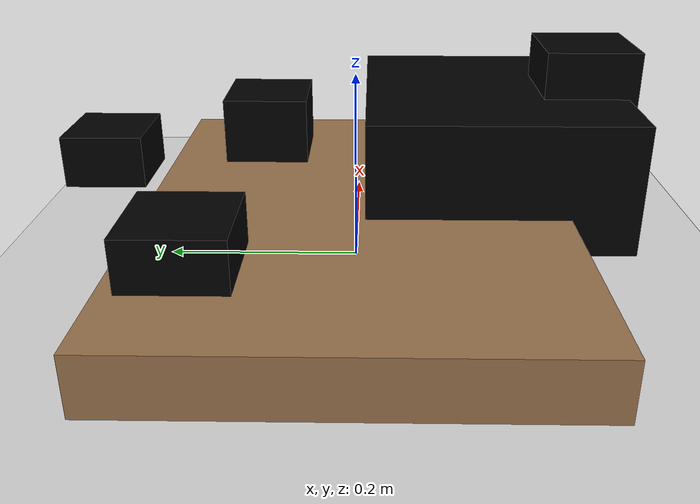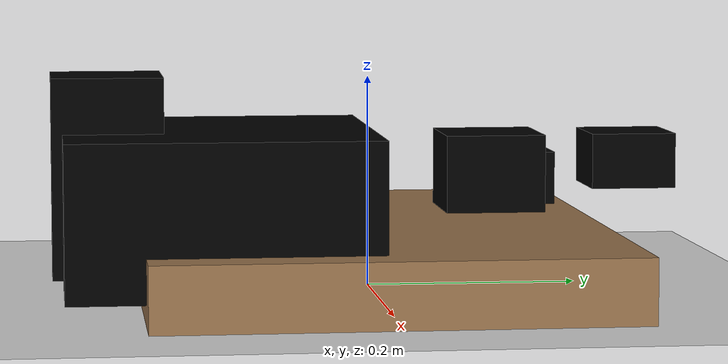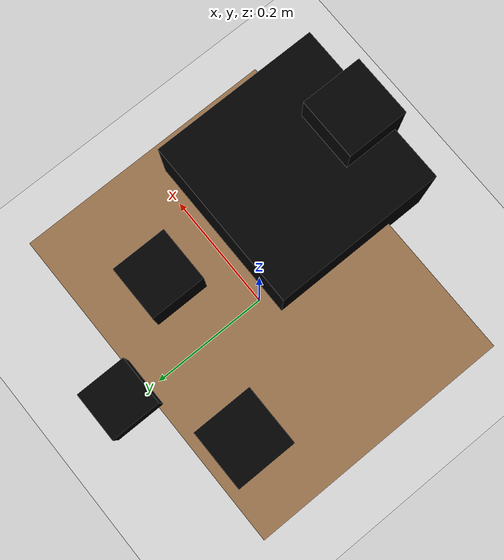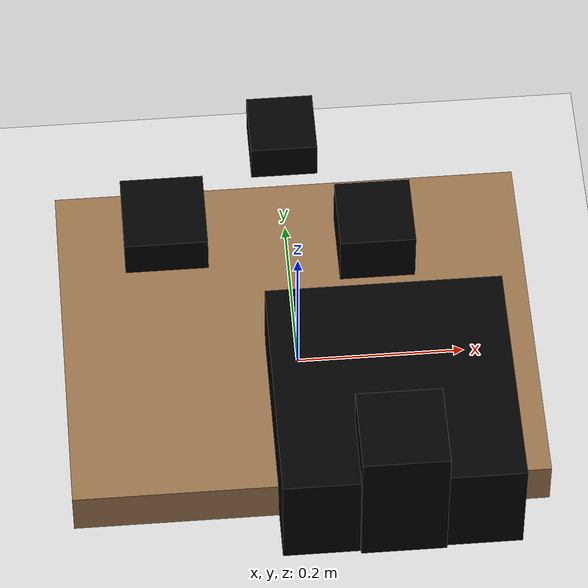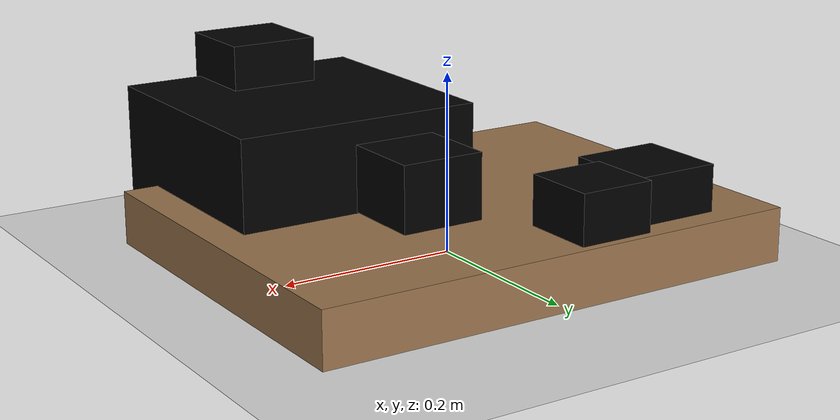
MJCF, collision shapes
<mujoco model="wipe_the_table">
  <compiler meshdir="../../../meshes"/>

  <visual>
    <map znear="0.001"/>
  </visual>

  <asset>
    <!-- meshdir resolved to assets/meshes/ via robotiq.xml compiler -->
    <mesh name="blue_duck_part_000" file="wipe_the_table/blue_duck/part_000.obj"/>
    <mesh name="blue_duck_part_001" file="wipe_the_table/blue_duck/part_001.obj"/>
    <mesh name="blue_duck_part_002" file="wipe_the_table/blue_duck/part_002.obj"/>
    <mesh name="blue_duck_part_003" file="wipe_the_table/blue_duck/part_003.obj"/>
    <mesh name="blue_duck_part_004" file="wipe_the_table/blue_duck/part_004.obj"/>
    <mesh name="blue_duck_part_005" file="wipe_the_table/blue_duck/part_005.obj"/>
    <mesh name="blue_duck_part_006" file="wipe_the_table/blue_duck/part_006.obj"/>
    <mesh name="blue_duck_part_007" file="wipe_the_table/blue_duck/part_007.obj"/>
    <mesh name="blue_duck_part_008" file="wipe_the_table/blue_duck/part_008.obj"/>
    <mesh name="blue_duck_part_009" file="wipe_the_table/blue_duck/part_009.obj"/>
    <mesh name="blue_duck_part_010" file="wipe_the_table/blue_duck/part_010.obj"/>
    <mesh name="blue_duck_part_011" file="wipe_the_table/blue_duck/part_011.obj"/>
    <mesh name="blue_duck_part_012" file="wipe_the_table/blue_duck/part_012.obj"/>
    <mesh name="blue_duck_part_013" file="wipe_the_table/blue_duck/part_013.obj"/>
    <mesh name="blue_duck_part_014" file="wipe_the_table/blue_duck/part_014.obj"/>
    <mesh name="blue_duck_part_015" file="wipe_the_table/blue_duck/part_015.obj"/>
    <mesh name="blue_duck_part_016" file="wipe_the_table/blue_duck/part_016.obj"/>
    <mesh name="blue_duck_part_017" file="wipe_the_table/blue_duck/part_017.obj"/>
    <mesh name="blue_duck_part_018" file="wipe_the_table/blue_duck/part_018.obj"/>
    <mesh name="blue_duck_part_019" file="wipe_the_table/blue_duck/part_019.obj"/>
    <mesh name="blue_duck_part_020" file="wipe_the_table/blue_duck/part_020.obj"/>
    <mesh name="blue_duck_part_021" file="wipe_the_table/blue_duck/part_021.obj"/>
    <mesh name="blue_duck_part_022" file="wipe_the_table/blue_duck/part_022.obj"/>
    <mesh name="blue_duck_part_023" file="wipe_the_table/blue_duck/part_023.obj"/>
    <mesh name="blue_duck_part_024" file="wipe_the_table/blue_duck/part_024.obj"/>
    <mesh name="blue_duck_part_025" file="wipe_the_table/blue_duck/part_025.obj"/>
    <mesh name="blue_duck_part_026" file="wipe_the_table/blue_duck/part_026.obj"/>
    <mesh name="blue_duck_part_027" file="wipe_the_table/blue_duck/part_027.obj"/>
    <mesh name="blue_duck_part_028" file="wipe_the_table/blue_duck/part_028.obj"/>
    <mesh name="blue_duck_part_029" file="wipe_the_table/blue_duck/part_029.obj"/>
    <mesh name="blue_duck_part_030" file="wipe_the_table/blue_duck/part_030.obj"/>
    <mesh name="chicken_doll_part_000" file="wipe_the_table/chicken_doll/part_000.obj"/>
    <mesh name="chicken_doll_part_001" file="wipe_the_table/chicken_doll/part_001.obj"/>
    <mesh name="chicken_doll_part_002" file="wipe_the_table/chicken_doll/part_002.obj"/>
    <mesh name="chicken_doll_part_003" file="wipe_the_table/chicken_doll/part_003.obj"/>
    <mesh name="chicken_doll_part_004" file="wipe_the_table/chicken_doll/part_004.obj"/>
    <mesh name="chicken_doll_part_005" file="wipe_the_table/chicken_doll/part_005.obj"/>
    <mesh name="chicken_doll_part_006" file="wipe_the_table/chicken_doll/part_006.obj"/>
    <mesh name="chicken_doll_part_007" file="wipe_the_table/chicken_doll/part_007.obj"/>
    <mesh name="chicken_doll_part_008" file="wipe_the_table/chicken_doll/part_008.obj"/>
    <mesh name="chicken_doll_part_009" file="wipe_the_table/chicken_doll/part_009.obj"/>
    <mesh name="chicken_doll_part_010" file="wipe_the_table/chicken_doll/part_010.obj"/>
    <mesh name="chicken_doll_part_011" file="wipe_the_table/chicken_doll/part_011.obj"/>
    <mesh name="chicken_doll_part_012" file="wipe_the_table/chicken_doll/part_012.obj"/>
    <mesh name="chicken_doll_part_013" file="wipe_the_table/chicken_doll/part_013.obj"/>
    <mesh name="chicken_doll_part_014" file="wipe_the_table/chicken_doll/part_014.obj"/>
    <mesh name="chicken_doll_part_015" file="wipe_the_table/chicken_doll/part_015.obj"/>
    <mesh name="chicken_doll_part_016" file="wipe_the_table/chicken_doll/part_016.obj"/>
    <mesh name="chicken_doll_part_017" file="wipe_the_table/chicken_doll/part_017.obj"/>
    <mesh name="chicken_doll_part_018" file="wipe_the_table/chicken_doll/part_018.obj"/>
    <mesh name="chicken_doll_part_019" file="wipe_the_table/chicken_doll/part_019.obj"/>
    <mesh name="chicken_doll_part_020" file="wipe_the_table/chicken_doll/part_020.obj"/>
    <mesh name="chicken_doll_part_021" file="wipe_the_table/chicken_doll/part_021.obj"/>
    <mesh name="chicken_doll_part_022" file="wipe_the_table/chicken_doll/part_022.obj"/>
    <mesh name="chicken_doll_part_023" file="wipe_the_table/chicken_doll/part_023.obj"/>
    <mesh name="chicken_doll_part_024" file="wipe_the_table/chicken_doll/part_024.obj"/>
    <mesh name="chicken_doll_part_025" file="wipe_the_table/chicken_doll/part_025.obj"/>
    <mesh name="chicken_doll_part_026" file="wipe_the_table/chicken_doll/part_026.obj"/>
    <mesh name="chicken_doll_part_027" file="wipe_the_table/chicken_doll/part_027.obj"/>
    <mesh name="chicken_doll_part_028" file="wipe_the_table/chicken_doll/part_028.obj"/>
    <mesh name="chicken_doll_part_029" file="wipe_the_table/chicken_doll/part_029.obj"/>
    <mesh name="chicken_doll_part_030" file="wipe_the_table/chicken_doll/part_030.obj"/>
    <mesh name="dog_part_000" file="wipe_the_table/dog/part_000.obj"/>
    <mesh name="dog_part_001" file="wipe_the_table/dog/part_001.obj"/>
    <mesh name="dog_part_002" file="wipe_the_table/dog/part_002.obj"/>
    <mesh name="dog_part_003" file="wipe_the_table/dog/part_003.obj"/>
    <mesh name="dog_part_004" file="wipe_the_table/dog/part_004.obj"/>
    <mesh name="dog_part_005" file="wipe_the_table/dog/part_005.obj"/>
    <mesh name="dog_part_006" file="wipe_the_table/dog/part_006.obj"/>
    <mesh name="dog_part_007" file="wipe_the_table/dog/part_007.obj"/>
    <mesh name="dog_part_008" file="wipe_the_table/dog/part_008.obj"/>
    <mesh name="dog_part_009" file="wipe_the_table/dog/part_009.obj"/>
    <mesh name="dog_part_010" file="wipe_the_table/dog/part_010.obj"/>
    <mesh name="dog_part_011" file="wipe_the_table/dog/part_011.obj"/>
    <mesh name="dog_part_012" file="wipe_the_table/dog/part_012.obj"/>
    <mesh name="dog_part_013" file="wipe_the_table/dog/part_013.obj"/>
    <mesh name="dog_part_014" file="wipe_the_table/dog/part_014.obj"/>
    <mesh name="dog_part_015" file="wipe_the_table/dog/part_015.obj"/>
    <mesh name="dog_part_016" file="wipe_the_table/dog/part_016.obj"/>
    <mesh name="dog_part_017" file="wipe_the_table/dog/part_017.obj"/>
    <mesh name="dog_part_018" file="wipe_the_table/dog/part_018.obj"/>
    <mesh name="dog_part_019" file="wipe_the_table/dog/part_019.obj"/>
    <mesh name="dog_part_020" file="wipe_the_table/dog/part_020.obj"/>
    <mesh name="dog_part_021" file="wipe_the_table/dog/part_021.obj"/>
    <mesh name="dog_part_022" file="wipe_the_table/dog/part_022.obj"/>
    <mesh name="dog_part_023" file="wipe_the_table/dog/part_023.obj"/>
    <mesh name="dog_part_024" file="wipe_the_table/dog/part_024.obj"/>
    <mesh name="dog_part_025" file="wipe_the_table/dog/part_025.obj"/>
    <mesh name="dog_part_026" file="wipe_the_table/dog/part_026.obj"/>
    <mesh name="dog_part_027" file="wipe_the_table/dog/part_027.obj"/>
    <mesh name="dog_part_028" file="wipe_the_table/dog/part_028.obj"/>
    <mesh name="dog_part_029" file="wipe_the_table/dog/part_029.obj"/>
    <mesh name="dog_part_030" file="wipe_the_table/dog/part_030.obj"/>
    <mesh name="dog_part_031" file="wipe_the_table/dog/part_031.obj"/>
    <mesh name="white_box_part_000" file="wipe_the_table/white_box/part_000.obj"/>
    <mesh name="white_box_part_001" file="wipe_the_table/white_box/part_001.obj"/>
    <mesh name="white_box_part_002" file="wipe_the_table/white_box/part_002.obj"/>
    <mesh name="white_box_part_003" file="wipe_the_table/white_box/part_003.obj"/>
    <mesh name="white_box_part_004" file="wipe_the_table/white_box/part_004.obj"/>
    <mesh name="white_box_part_005" file="wipe_the_table/white_box/part_005.obj"/>
    <mesh name="white_box_part_006" file="wipe_the_table/white_box/part_006.obj"/>
    <mesh name="white_box_part_007" file="wipe_the_table/white_box/part_007.obj"/>
    <mesh name="white_box_part_008" file="wipe_the_table/white_box/part_008.obj"/>
    <mesh name="white_box_part_009" file="wipe_the_table/white_box/part_009.obj"/>
    <mesh name="white_box_part_010" file="wipe_the_table/white_box/part_010.obj"/>
    <mesh name="white_box_part_011" file="wipe_the_table/white_box/part_011.obj"/>
    <mesh name="white_box_part_012" file="wipe_the_table/white_box/part_012.obj"/>
    <mesh name="white_box_part_013" file="wipe_the_table/white_box/part_013.obj"/>
    <mesh name="white_box_part_014" file="wipe_the_table/white_box/part_014.obj"/>
    <mesh name="white_box_part_015" file="wipe_the_table/white_box/part_015.obj"/>
    <mesh name="white_box_part_016" file="wipe_the_table/white_box/part_016.obj"/>
    <mesh name="white_box_part_017" file="wipe_the_table/white_box/part_017.obj"/>
    <mesh name="white_box_part_018" file="wipe_the_table/white_box/part_018.obj"/>
    <mesh name="white_box_part_019" file="wipe_the_table/white_box/part_019.obj"/>
    <mesh name="white_box_part_020" file="wipe_the_table/white_box/part_020.obj"/>
    <mesh name="white_box_part_021" file="wipe_the_table/white_box/part_021.obj"/>
    <mesh name="white_box_part_022" file="wipe_the_table/white_box/part_022.obj"/>
    <mesh name="white_box_part_023" file="wipe_the_table/white_box/part_023.obj"/>
    <mesh name="white_box_part_024" file="wipe_the_table/white_box/part_024.obj"/>
    <mesh name="white_box_part_025" file="wipe_the_table/white_box/part_025.obj"/>
    <mesh name="white_box_part_026" file="wipe_the_table/white_box/part_026.obj"/>
    <mesh name="white_box_part_027" file="wipe_the_table/white_box/part_027.obj"/>
    <mesh name="white_box_part_028" file="wipe_the_table/white_box/part_028.obj"/>
    <mesh name="white_box_part_029" file="wipe_the_table/white_box/part_029.obj"/>
    <mesh name="white_box_part_030" file="wipe_the_table/white_box/part_030.obj"/>
    <mesh name="white_box_part_031" file="wipe_the_table/white_box/part_031.obj"/>
    <mesh name="yellow_brush_part_000" file="wipe_the_table/yellow_brush/part_000.obj"/>
    <mesh name="yellow_brush_part_001" file="wipe_the_table/yellow_brush/part_001.obj"/>
    <mesh name="yellow_brush_part_002" file="wipe_the_table/yellow_brush/part_002.obj"/>
    <mesh name="yellow_brush_part_003" file="wipe_the_table/yellow_brush/part_003.obj"/>
    <mesh name="yellow_brush_part_004" file="wipe_the_table/yellow_brush/part_004.obj"/>
    <mesh name="yellow_brush_part_005" file="wipe_the_table/yellow_brush/part_005.obj"/>
    <mesh name="yellow_brush_part_006" file="wipe_the_table/yellow_brush/part_006.obj"/>
    <mesh name="yellow_brush_part_007" file="wipe_the_table/yellow_brush/part_007.obj"/>
    <mesh name="yellow_brush_part_008" file="wipe_the_table/yellow_brush/part_008.obj"/>
    <mesh name="yellow_brush_part_009" file="wipe_the_table/yellow_brush/part_009.obj"/>
    <mesh name="yellow_brush_part_010" file="wipe_the_table/yellow_brush/part_010.obj"/>
    <mesh name="yellow_brush_part_011" file="wipe_the_table/yellow_brush/part_011.obj"/>
    <mesh name="yellow_brush_part_012" file="wipe_the_table/yellow_brush/part_012.obj"/>
    <mesh name="yellow_brush_part_013" file="wipe_the_table/yellow_brush/part_013.obj"/>
    <mesh name="yellow_brush_part_014" file="wipe_the_table/yellow_brush/part_014.obj"/>
    <mesh name="yellow_brush_part_015" file="wipe_the_table/yellow_brush/part_015.obj"/>
    <mesh name="yellow_brush_part_016" file="wipe_the_table/yellow_brush/part_016.obj"/>
    <mesh name="yellow_brush_part_017" file="wipe_the_table/yellow_brush/part_017.obj"/>
    <mesh name="yellow_brush_part_018" file="wipe_the_table/yellow_brush/part_018.obj"/>
    <mesh name="yellow_brush_part_019" file="wipe_the_table/yellow_brush/part_019.obj"/>
    <mesh name="yellow_brush_part_020" file="wipe_the_table/yellow_brush/part_020.obj"/>
    <mesh name="yellow_brush_part_021" file="wipe_the_table/yellow_brush/part_021.obj"/>
    <mesh name="yellow_brush_part_022" file="wipe_the_table/yellow_brush/part_022.obj"/>
    <mesh name="yellow_brush_part_023" file="wipe_the_table/yellow_brush/part_023.obj"/>
    <mesh name="yellow_brush_part_024" file="wipe_the_table/yellow_brush/part_024.obj"/>
    <mesh name="yellow_brush_part_025" file="wipe_the_table/yellow_brush/part_025.obj"/>
    <mesh name="yellow_brush_part_026" file="wipe_the_table/yellow_brush/part_026.obj"/>
    <mesh name="yellow_brush_part_027" file="wipe_the_table/yellow_brush/part_027.obj"/>
    <mesh name="yellow_brush_part_028" file="wipe_the_table/yellow_brush/part_028.obj"/>
    <mesh name="yellow_brush_part_029" file="wipe_the_table/yellow_brush/part_029.obj"/>
    <mesh name="yellow_brush_part_030" file="wipe_the_table/yellow_brush/part_030.obj"/>
    <mesh name="yellow_brush_part_031" file="wipe_the_table/yellow_brush/part_031.obj"/>
    <mesh name="transparent_tape_paper_part_000" file="wipe_the_table/transparent_tape_paper/part_000.obj"/>
    <mesh name="transparent_tape_paper_part_001" file="wipe_the_table/transparent_tape_paper/part_001.obj"/>
    <mesh name="transparent_tape_paper_part_002" file="wipe_the_table/transparent_tape_paper/part_002.obj"/>
    <mesh name="transparent_tape_paper_part_003" file="wipe_the_table/transparent_tape_paper/part_003.obj"/>
    <mesh name="transparent_tape_paper_part_004" file="wipe_the_table/transparent_tape_paper/part_004.obj"/>
    <mesh name="transparent_tape_paper_part_005" file="wipe_the_table/transparent_tape_paper/part_005.obj"/>
    <mesh name="transparent_tape_paper_part_006" file="wipe_the_table/transparent_tape_paper/part_006.obj"/>
    <mesh name="transparent_tape_paper_part_007" file="wipe_the_table/transparent_tape_paper/part_007.obj"/>
    <mesh name="transparent_tape_paper_part_008" file="wipe_the_table/transparent_tape_paper/part_008.obj"/>
    <mesh name="transparent_tape_paper_part_009" file="wipe_the_table/transparent_tape_paper/part_009.obj"/>
    <mesh name="transparent_tape_paper_part_010" file="wipe_the_table/transparent_tape_paper/part_010.obj"/>
    <mesh name="transparent_tape_paper_part_011" file="wipe_the_table/transparent_tape_paper/part_011.obj"/>
    <mesh name="transparent_tape_paper_part_012" file="wipe_the_table/transparent_tape_paper/part_012.obj"/>
    <mesh name="transparent_tape_paper_part_013" file="wipe_the_table/transparent_tape_paper/part_013.obj"/>
    <mesh name="transparent_tape_paper_part_014" file="wipe_the_table/transparent_tape_paper/part_014.obj"/>
    <mesh name="transparent_tape_paper_part_015" file="wipe_the_table/transparent_tape_paper/part_015.obj"/>
    <mesh name="transparent_tape_paper_part_016" file="wipe_the_table/transparent_tape_paper/part_016.obj"/>
    <mesh name="transparent_tape_paper_part_017" file="wipe_the_table/transparent_tape_paper/part_017.obj"/>
    <mesh name="transparent_tape_paper_part_018" file="wipe_the_table/transparent_tape_paper/part_018.obj"/>
    <mesh name="transparent_tape_paper_part_019" file="wipe_the_table/transparent_tape_paper/part_019.obj"/>
    <mesh name="transparent_tape_paper_part_020" file="wipe_the_table/transparent_tape_paper/part_020.obj"/>
    <mesh name="transparent_tape_paper_part_021" file="wipe_the_table/transparent_tape_paper/part_021.obj"/>
    <mesh name="transparent_tape_paper_part_022" file="wipe_the_table/transparent_tape_paper/part_022.obj"/>
    <mesh name="transparent_tape_paper_part_023" file="wipe_the_table/transparent_tape_paper/part_023.obj"/>
    <mesh name="transparent_tape_paper_part_024" file="wipe_the_table/transparent_tape_paper/part_024.obj"/>
    <mesh name="transparent_tape_paper_part_025" file="wipe_the_table/transparent_tape_paper/part_025.obj"/>

    <material name="blue_duck_mat" rgba="0.1 0.3 0.9 1" reflectance="0.2"/>
    <material name="chicken_doll_mat" rgba="0.95 0.85 0.2 1" reflectance="0.2"/>
    <material name="dog_mat" rgba="0.7 0.5 0.3 1" reflectance="0.2"/>
    <material name="white_box_mat" rgba="0.9 0.9 0.9 1" reflectance="0.2"/>
    <material name="yellow_brush_mat" rgba="0.95 0.85 0.1 1" reflectance="0.2"/>
    <material name="transparent_tape_paper_mat" rgba="0.8 0.8 0.9 0.7" reflectance="0.2"/>
  </asset>

  <worldbody>
    <light name="demo_light" pos="0 0 1.5" dir="0 0 -1"/>
    <geom name="floor" type="plane" size="2 2 0.1" rgba="0.85 0.85 0.85 1"/>

    <!-- table: center z=0.03, half-height=0.03 → top surface z=0.06 -->
    <body name="table" pos="0 0 0.03">
      <geom name="table_top" type="box" size="0.28 0.22 0.03" rgba="0.6 0.45 0.3 1"/>
    </body>

    <!-- blue duck (dynamic) -->
    <body name="blue_duck" pos="0.0  0.25 0.12">
      <freejoint name="blue_duck_joint"/>
      <geom name="blue_duck_vis_000" type="mesh" mesh="blue_duck_part_000" material="blue_duck_mat" density="0" contype="0" conaffinity="0" group="1"/>
      <geom name="blue_duck_vis_001" type="mesh" mesh="blue_duck_part_001" material="blue_duck_mat" density="0" contype="0" conaffinity="0" group="1"/>
      <geom name="blue_duck_vis_002" type="mesh" mesh="blue_duck_part_002" material="blue_duck_mat" density="0" contype="0" conaffinity="0" group="1"/>
      <geom name="blue_duck_vis_003" type="mesh" mesh="blue_duck_part_003" material="blue_duck_mat" density="0" contype="0" conaffinity="0" group="1"/>
      <geom name="blue_duck_vis_004" type="mesh" mesh="blue_duck_part_004" material="blue_duck_mat" density="0" contype="0" conaffinity="0" group="1"/>
      <geom name="blue_duck_vis_005" type="mesh" mesh="blue_duck_part_005" material="blue_duck_mat" density="0" contype="0" conaffinity="0" group="1"/>
      <geom name="blue_duck_vis_006" type="mesh" mesh="blue_duck_part_006" material="blue_duck_mat" density="0" contype="0" conaffinity="0" group="1"/>
      <geom name="blue_duck_vis_007" type="mesh" mesh="blue_duck_part_007" material="blue_duck_mat" density="0" contype="0" conaffinity="0" group="1"/>
      <geom name="blue_duck_vis_008" type="mesh" mesh="blue_duck_part_008" material="blue_duck_mat" density="0" contype="0" conaffinity="0" group="1"/>
      <geom name="blue_duck_vis_009" type="mesh" mesh="blue_duck_part_009" material="blue_duck_mat" density="0" contype="0" conaffinity="0" group="1"/>
      <geom name="blue_duck_vis_010" type="mesh" mesh="blue_duck_part_010" material="blue_duck_mat" density="0" contype="0" conaffinity="0" group="1"/>
      <geom name="blue_duck_vis_011" type="mesh" mesh="blue_duck_part_011" material="blue_duck_mat" density="0" contype="0" conaffinity="0" group="1"/>
      <geom name="blue_duck_vis_012" type="mesh" mesh="blue_duck_part_012" material="blue_duck_mat" density="0" contype="0" conaffinity="0" group="1"/>
      <geom name="blue_duck_vis_013" type="mesh" mesh="blue_duck_part_013" material="blue_duck_mat" density="0" contype="0" conaffinity="0" group="1"/>
      <geom name="blue_duck_vis_014" type="mesh" mesh="blue_duck_part_014" material="blue_duck_mat" density="0" contype="0" conaffinity="0" group="1"/>
      <geom name="blue_duck_vis_015" type="mesh" mesh="blue_duck_part_015" material="blue_duck_mat" density="0" contype="0" conaffinity="0" group="1"/>
      <geom name="blue_duck_vis_016" type="mesh" mesh="blue_duck_part_016" material="blue_duck_mat" density="0" contype="0" conaffinity="0" group="1"/>
      <geom name="blue_duck_vis_017" type="mesh" mesh="blue_duck_part_017" material="blue_duck_mat" density="0" contype="0" conaffinity="0" group="1"/>
      <geom name="blue_duck_vis_018" type="mesh" mesh="blue_duck_part_018" material="blue_duck_mat" density="0" contype="0" conaffinity="0" group="1"/>
      <geom name="blue_duck_vis_019" type="mesh" mesh="blue_duck_part_019" material="blue_duck_mat" density="0" contype="0" conaffinity="0" group="1"/>
      <geom name="blue_duck_vis_020" type="mesh" mesh="blue_duck_part_020" material="blue_duck_mat" density="0" contype="0" conaffinity="0" group="1"/>
      <geom name="blue_duck_vis_021" type="mesh" mesh="blue_duck_part_021" material="blue_duck_mat" density="0" contype="0" conaffinity="0" group="1"/>
      <geom name="blue_duck_vis_022" type="mesh" mesh="blue_duck_part_022" material="blue_duck_mat" density="0" contype="0" conaffinity="0" group="1"/>
      <geom name="blue_duck_vis_023" type="mesh" mesh="blue_duck_part_023" material="blue_duck_mat" density="0" contype="0" conaffinity="0" group="1"/>
      <geom name="blue_duck_vis_024" type="mesh" mesh="blue_duck_part_024" material="blue_duck_mat" density="0" contype="0" conaffinity="0" group="1"/>
      <geom name="blue_duck_vis_025" type="mesh" mesh="blue_duck_part_025" material="blue_duck_mat" density="0" contype="0" conaffinity="0" group="1"/>
      <geom name="blue_duck_vis_026" type="mesh" mesh="blue_duck_part_026" material="blue_duck_mat" density="0" contype="0" conaffinity="0" group="1"/>
      <geom name="blue_duck_vis_027" type="mesh" mesh="blue_duck_part_027" material="blue_duck_mat" density="0" contype="0" conaffinity="0" group="1"/>
      <geom name="blue_duck_vis_028" type="mesh" mesh="blue_duck_part_028" material="blue_duck_mat" density="0" contype="0" conaffinity="0" group="1"/>
      <geom name="blue_duck_vis_029" type="mesh" mesh="blue_duck_part_029" material="blue_duck_mat" density="0" contype="0" conaffinity="0" group="1"/>
      <geom name="blue_duck_vis_030" type="mesh" mesh="blue_duck_part_030" material="blue_duck_mat" density="0" contype="0" conaffinity="0" group="1"/>
      <geom name="blue_duck_col" type="box" size="0.04 0.04 0.026" mass="0.1" rgba="0 0 0 0" contype="1" conaffinity="1"/>
      <site name="blue_duck_site" pos="0 0 0" size="0.004" rgba="1 0 0 0"/>
    </body>
    <!-- chicken doll (dynamic) -->
    <body name="chicken_doll" pos="0.1  0.1  0.12">
      <freejoint name="chicken_doll_joint"/>
      <geom name="chicken_doll_vis_000" type="mesh" mesh="chicken_doll_part_000" material="chicken_doll_mat" density="0" contype="0" conaffinity="0" group="1"/>
      <geom name="chicken_doll_vis_001" type="mesh" mesh="chicken_doll_part_001" material="chicken_doll_mat" density="0" contype="0" conaffinity="0" group="1"/>
      <geom name="chicken_doll_vis_002" type="mesh" mesh="chicken_doll_part_002" material="chicken_doll_mat" density="0" contype="0" conaffinity="0" group="1"/>
      <geom name="chicken_doll_vis_003" type="mesh" mesh="chicken_doll_part_003" material="chicken_doll_mat" density="0" contype="0" conaffinity="0" group="1"/>
      <geom name="chicken_doll_vis_004" type="mesh" mesh="chicken_doll_part_004" material="chicken_doll_mat" density="0" contype="0" conaffinity="0" group="1"/>
      <geom name="chicken_doll_vis_005" type="mesh" mesh="chicken_doll_part_005" material="chicken_doll_mat" density="0" contype="0" conaffinity="0" group="1"/>
      <geom name="chicken_doll_vis_006" type="mesh" mesh="chicken_doll_part_006" material="chicken_doll_mat" density="0" contype="0" conaffinity="0" group="1"/>
      <geom name="chicken_doll_vis_007" type="mesh" mesh="chicken_doll_part_007" material="chicken_doll_mat" density="0" contype="0" conaffinity="0" group="1"/>
      <geom name="chicken_doll_vis_008" type="mesh" mesh="chicken_doll_part_008" material="chicken_doll_mat" density="0" contype="0" conaffinity="0" group="1"/>
      <geom name="chicken_doll_vis_009" type="mesh" mesh="chicken_doll_part_009" material="chicken_doll_mat" density="0" contype="0" conaffinity="0" group="1"/>
      <geom name="chicken_doll_vis_010" type="mesh" mesh="chicken_doll_part_010" material="chicken_doll_mat" density="0" contype="0" conaffinity="0" group="1"/>
      <geom name="chicken_doll_vis_011" type="mesh" mesh="chicken_doll_part_011" material="chicken_doll_mat" density="0" contype="0" conaffinity="0" group="1"/>
      <geom name="chicken_doll_vis_012" type="mesh" mesh="chicken_doll_part_012" material="chicken_doll_mat" density="0" contype="0" conaffinity="0" group="1"/>
      <geom name="chicken_doll_vis_013" type="mesh" mesh="chicken_doll_part_013" material="chicken_doll_mat" density="0" contype="0" conaffinity="0" group="1"/>
      <geom name="chicken_doll_vis_014" type="mesh" mesh="chicken_doll_part_014" material="chicken_doll_mat" density="0" contype="0" conaffinity="0" group="1"/>
      <geom name="chicken_doll_vis_015" type="mesh" mesh="chicken_doll_part_015" material="chicken_doll_mat" density="0" contype="0" conaffinity="0" group="1"/>
      <geom name="chicken_doll_vis_016" type="mesh" mesh="chicken_doll_part_016" material="chicken_doll_mat" density="0" contype="0" conaffinity="0" group="1"/>
      <geom name="chicken_doll_vis_017" type="mesh" mesh="chicken_doll_part_017" material="chicken_doll_mat" density="0" contype="0" conaffinity="0" group="1"/>
      <geom name="chicken_doll_vis_018" type="mesh" mesh="chicken_doll_part_018" material="chicken_doll_mat" density="0" contype="0" conaffinity="0" group="1"/>
      <geom name="chicken_doll_vis_019" type="mesh" mesh="chicken_doll_part_019" material="chicken_doll_mat" density="0" contype="0" conaffinity="0" group="1"/>
      <geom name="chicken_doll_vis_020" type="mesh" mesh="chicken_doll_part_020" material="chicken_doll_mat" density="0" contype="0" conaffinity="0" group="1"/>
      <geom name="chicken_doll_vis_021" type="mesh" mesh="chicken_doll_part_021" material="chicken_doll_mat" density="0" contype="0" conaffinity="0" group="1"/>
      <geom name="chicken_doll_vis_022" type="mesh" mesh="chicken_doll_part_022" material="chicken_doll_mat" density="0" contype="0" conaffinity="0" group="1"/>
      <geom name="chicken_doll_vis_023" type="mesh" mesh="chicken_doll_part_023" material="chicken_doll_mat" density="0" contype="0" conaffinity="0" group="1"/>
      <geom name="chicken_doll_vis_024" type="mesh" mesh="chicken_doll_part_024" material="chicken_doll_mat" density="0" contype="0" conaffinity="0" group="1"/>
      <geom name="chicken_doll_vis_025" type="mesh" mesh="chicken_doll_part_025" material="chicken_doll_mat" density="0" contype="0" conaffinity="0" group="1"/>
      <geom name="chicken_doll_vis_026" type="mesh" mesh="chicken_doll_part_026" material="chicken_doll_mat" density="0" contype="0" conaffinity="0" group="1"/>
      <geom name="chicken_doll_vis_027" type="mesh" mesh="chicken_doll_part_027" material="chicken_doll_mat" density="0" contype="0" conaffinity="0" group="1"/>
      <geom name="chicken_doll_vis_028" type="mesh" mesh="chicken_doll_part_028" material="chicken_doll_mat" density="0" contype="0" conaffinity="0" group="1"/>
      <geom name="chicken_doll_vis_029" type="mesh" mesh="chicken_doll_part_029" material="chicken_doll_mat" density="0" contype="0" conaffinity="0" group="1"/>
      <geom name="chicken_doll_vis_030" type="mesh" mesh="chicken_doll_part_030" material="chicken_doll_mat" density="0" contype="0" conaffinity="0" group="1"/>
      <geom name="chicken_doll_col" type="box" size="0.045 0.045 0.035" mass="0.1" rgba="0 0 0 0" contype="1" conaffinity="1"/>
      <site name="chicken_doll_site" pos="0 0 0" size="0.004" rgba="1 0 0 0"/>
    </body>
    <!-- dog (static) -->
    <body name="dog" pos="0.1 -0.25 0.12">
      <geom name="dog_vis_000" type="mesh" mesh="dog_part_000" material="dog_mat" density="0" contype="0" conaffinity="0" group="1"/>
      <geom name="dog_vis_001" type="mesh" mesh="dog_part_001" material="dog_mat" density="0" contype="0" conaffinity="0" group="1"/>
      <geom name="dog_vis_002" type="mesh" mesh="dog_part_002" material="dog_mat" density="0" contype="0" conaffinity="0" group="1"/>
      <geom name="dog_vis_003" type="mesh" mesh="dog_part_003" material="dog_mat" density="0" contype="0" conaffinity="0" group="1"/>
      <geom name="dog_vis_004" type="mesh" mesh="dog_part_004" material="dog_mat" density="0" contype="0" conaffinity="0" group="1"/>
      <geom name="dog_vis_005" type="mesh" mesh="dog_part_005" material="dog_mat" density="0" contype="0" conaffinity="0" group="1"/>
      <geom name="dog_vis_006" type="mesh" mesh="dog_part_006" material="dog_mat" density="0" contype="0" conaffinity="0" group="1"/>
      <geom name="dog_vis_007" type="mesh" mesh="dog_part_007" material="dog_mat" density="0" contype="0" conaffinity="0" group="1"/>
      <geom name="dog_vis_008" type="mesh" mesh="dog_part_008" material="dog_mat" density="0" contype="0" conaffinity="0" group="1"/>
      <geom name="dog_vis_009" type="mesh" mesh="dog_part_009" material="dog_mat" density="0" contype="0" conaffinity="0" group="1"/>
      <geom name="dog_vis_010" type="mesh" mesh="dog_part_010" material="dog_mat" density="0" contype="0" conaffinity="0" group="1"/>
      <geom name="dog_vis_011" type="mesh" mesh="dog_part_011" material="dog_mat" density="0" contype="0" conaffinity="0" group="1"/>
      <geom name="dog_vis_012" type="mesh" mesh="dog_part_012" material="dog_mat" density="0" contype="0" conaffinity="0" group="1"/>
      <geom name="dog_vis_013" type="mesh" mesh="dog_part_013" material="dog_mat" density="0" contype="0" conaffinity="0" group="1"/>
      <geom name="dog_vis_014" type="mesh" mesh="dog_part_014" material="dog_mat" density="0" contype="0" conaffinity="0" group="1"/>
      <geom name="dog_vis_015" type="mesh" mesh="dog_part_015" material="dog_mat" density="0" contype="0" conaffinity="0" group="1"/>
      <geom name="dog_vis_016" type="mesh" mesh="dog_part_016" material="dog_mat" density="0" contype="0" conaffinity="0" group="1"/>
      <geom name="dog_vis_017" type="mesh" mesh="dog_part_017" material="dog_mat" density="0" contype="0" conaffinity="0" group="1"/>
      <geom name="dog_vis_018" type="mesh" mesh="dog_part_018" material="dog_mat" density="0" contype="0" conaffinity="0" group="1"/>
      <geom name="dog_vis_019" type="mesh" mesh="dog_part_019" material="dog_mat" density="0" contype="0" conaffinity="0" group="1"/>
      <geom name="dog_vis_020" type="mesh" mesh="dog_part_020" material="dog_mat" density="0" contype="0" conaffinity="0" group="1"/>
      <geom name="dog_vis_021" type="mesh" mesh="dog_part_021" material="dog_mat" density="0" contype="0" conaffinity="0" group="1"/>
      <geom name="dog_vis_022" type="mesh" mesh="dog_part_022" material="dog_mat" density="0" contype="0" conaffinity="0" group="1"/>
      <geom name="dog_vis_023" type="mesh" mesh="dog_part_023" material="dog_mat" density="0" contype="0" conaffinity="0" group="1"/>
      <geom name="dog_vis_024" type="mesh" mesh="dog_part_024" material="dog_mat" density="0" contype="0" conaffinity="0" group="1"/>
      <geom name="dog_vis_025" type="mesh" mesh="dog_part_025" material="dog_mat" density="0" contype="0" conaffinity="0" group="1"/>
      <geom name="dog_vis_026" type="mesh" mesh="dog_part_026" material="dog_mat" density="0" contype="0" conaffinity="0" group="1"/>
      <geom name="dog_vis_027" type="mesh" mesh="dog_part_027" material="dog_mat" density="0" contype="0" conaffinity="0" group="1"/>
      <geom name="dog_vis_028" type="mesh" mesh="dog_part_028" material="dog_mat" density="0" contype="0" conaffinity="0" group="1"/>
      <geom name="dog_vis_029" type="mesh" mesh="dog_part_029" material="dog_mat" density="0" contype="0" conaffinity="0" group="1"/>
      <geom name="dog_vis_030" type="mesh" mesh="dog_part_030" material="dog_mat" density="0" contype="0" conaffinity="0" group="1"/>
      <geom name="dog_vis_031" type="mesh" mesh="dog_part_031" material="dog_mat" density="0" contype="0" conaffinity="0" group="1"/>
      <geom name="dog_col" type="box" size="0.05 0.05 0.09" mass="0.5" rgba="0 0 0 0" contype="1" conaffinity="1"/>
      <site name="dog_site" pos="0 0 0" size="0.004" rgba="1 0 0 0"/>
    </body>
    <!-- white box (static) -->
    <body name="white_box" pos="0.1 -0.15 0.09">
      <geom name="white_box_vis_000" type="mesh" mesh="white_box_part_000" material="white_box_mat" density="0" contype="0" conaffinity="0" group="1"/>
      <geom name="white_box_vis_001" type="mesh" mesh="white_box_part_001" material="white_box_mat" density="0" contype="0" conaffinity="0" group="1"/>
      <geom name="white_box_vis_002" type="mesh" mesh="white_box_part_002" material="white_box_mat" density="0" contype="0" conaffinity="0" group="1"/>
      <geom name="white_box_vis_003" type="mesh" mesh="white_box_part_003" material="white_box_mat" density="0" contype="0" conaffinity="0" group="1"/>
      <geom name="white_box_vis_004" type="mesh" mesh="white_box_part_004" material="white_box_mat" density="0" contype="0" conaffinity="0" group="1"/>
      <geom name="white_box_vis_005" type="mesh" mesh="white_box_part_005" material="white_box_mat" density="0" contype="0" conaffinity="0" group="1"/>
      <geom name="white_box_vis_006" type="mesh" mesh="white_box_part_006" material="white_box_mat" density="0" contype="0" conaffinity="0" group="1"/>
      <geom name="white_box_vis_007" type="mesh" mesh="white_box_part_007" material="white_box_mat" density="0" contype="0" conaffinity="0" group="1"/>
      <geom name="white_box_vis_008" type="mesh" mesh="white_box_part_008" material="white_box_mat" density="0" contype="0" conaffinity="0" group="1"/>
      <geom name="white_box_vis_009" type="mesh" mesh="white_box_part_009" material="white_box_mat" density="0" contype="0" conaffinity="0" group="1"/>
      <geom name="white_box_vis_010" type="mesh" mesh="white_box_part_010" material="white_box_mat" density="0" contype="0" conaffinity="0" group="1"/>
      <geom name="white_box_vis_011" type="mesh" mesh="white_box_part_011" material="white_box_mat" density="0" contype="0" conaffinity="0" group="1"/>
      <geom name="white_box_vis_012" type="mesh" mesh="white_box_part_012" material="white_box_mat" density="0" contype="0" conaffinity="0" group="1"/>
      <geom name="white_box_vis_013" type="mesh" mesh="white_box_part_013" material="white_box_mat" density="0" contype="0" conaffinity="0" group="1"/>
      <geom name="white_box_vis_014" type="mesh" mesh="white_box_part_014" material="white_box_mat" density="0" contype="0" conaffinity="0" group="1"/>
      <geom name="white_box_vis_015" type="mesh" mesh="white_box_part_015" material="white_box_mat" density="0" contype="0" conaffinity="0" group="1"/>
      <geom name="white_box_vis_016" type="mesh" mesh="white_box_part_016" material="white_box_mat" density="0" contype="0" conaffinity="0" group="1"/>
      <geom name="white_box_vis_017" type="mesh" mesh="white_box_part_017" material="white_box_mat" density="0" contype="0" conaffinity="0" group="1"/>
      <geom name="white_box_vis_018" type="mesh" mesh="white_box_part_018" material="white_box_mat" density="0" contype="0" conaffinity="0" group="1"/>
      <geom name="white_box_vis_019" type="mesh" mesh="white_box_part_019" material="white_box_mat" density="0" contype="0" conaffinity="0" group="1"/>
      <geom name="white_box_vis_020" type="mesh" mesh="white_box_part_020" material="white_box_mat" density="0" contype="0" conaffinity="0" group="1"/>
      <geom name="white_box_vis_021" type="mesh" mesh="white_box_part_021" material="white_box_mat" density="0" contype="0" conaffinity="0" group="1"/>
      <geom name="white_box_vis_022" type="mesh" mesh="white_box_part_022" material="white_box_mat" density="0" contype="0" conaffinity="0" group="1"/>
      <geom name="white_box_vis_023" type="mesh" mesh="white_box_part_023" material="white_box_mat" density="0" contype="0" conaffinity="0" group="1"/>
      <geom name="white_box_vis_024" type="mesh" mesh="white_box_part_024" material="white_box_mat" density="0" contype="0" conaffinity="0" group="1"/>
      <geom name="white_box_vis_025" type="mesh" mesh="white_box_part_025" material="white_box_mat" density="0" contype="0" conaffinity="0" group="1"/>
      <geom name="white_box_vis_026" type="mesh" mesh="white_box_part_026" material="white_box_mat" density="0" contype="0" conaffinity="0" group="1"/>
      <geom name="white_box_vis_027" type="mesh" mesh="white_box_part_027" material="white_box_mat" density="0" contype="0" conaffinity="0" group="1"/>
      <geom name="white_box_vis_028" type="mesh" mesh="white_box_part_028" material="white_box_mat" density="0" contype="0" conaffinity="0" group="1"/>
      <geom name="white_box_vis_029" type="mesh" mesh="white_box_part_029" material="white_box_mat" density="0" contype="0" conaffinity="0" group="1"/>
      <geom name="white_box_vis_030" type="mesh" mesh="white_box_part_030" material="white_box_mat" density="0" contype="0" conaffinity="0" group="1"/>
      <geom name="white_box_vis_031" type="mesh" mesh="white_box_part_031" material="white_box_mat" density="0" contype="0" conaffinity="0" group="1"/>
      <geom name="white_box_col" type="box" size="0.14 0.14 0.07" mass="0.5" rgba="0 0 0 0" contype="1" conaffinity="1"/>
      <site name="white_box_site" pos="0 0 0" size="0.004" rgba="1 0 0 0"/>
    </body>
    <!-- yellow brush (static) -->
    <body name="yellow_brush" pos="0.1 -0.06 0.075">
      <geom name="yellow_brush_vis_000" type="mesh" mesh="yellow_brush_part_000" material="yellow_brush_mat" density="0" contype="0" conaffinity="0" group="1"/>
      <geom name="yellow_brush_vis_001" type="mesh" mesh="yellow_brush_part_001" material="yellow_brush_mat" density="0" contype="0" conaffinity="0" group="1"/>
      <geom name="yellow_brush_vis_002" type="mesh" mesh="yellow_brush_part_002" material="yellow_brush_mat" density="0" contype="0" conaffinity="0" group="1"/>
      <geom name="yellow_brush_vis_003" type="mesh" mesh="yellow_brush_part_003" material="yellow_brush_mat" density="0" contype="0" conaffinity="0" group="1"/>
      <geom name="yellow_brush_vis_004" type="mesh" mesh="yellow_brush_part_004" material="yellow_brush_mat" density="0" contype="0" conaffinity="0" group="1"/>
      <geom name="yellow_brush_vis_005" type="mesh" mesh="yellow_brush_part_005" material="yellow_brush_mat" density="0" contype="0" conaffinity="0" group="1"/>
      <geom name="yellow_brush_vis_006" type="mesh" mesh="yellow_brush_part_006" material="yellow_brush_mat" density="0" contype="0" conaffinity="0" group="1"/>
      <geom name="yellow_brush_vis_007" type="mesh" mesh="yellow_brush_part_007" material="yellow_brush_mat" density="0" contype="0" conaffinity="0" group="1"/>
      <geom name="yellow_brush_vis_008" type="mesh" mesh="yellow_brush_part_008" material="yellow_brush_mat" density="0" contype="0" conaffinity="0" group="1"/>
      <geom name="yellow_brush_vis_009" type="mesh" mesh="yellow_brush_part_009" material="yellow_brush_mat" density="0" contype="0" conaffinity="0" group="1"/>
      <geom name="yellow_brush_vis_010" type="mesh" mesh="yellow_brush_part_010" material="yellow_brush_mat" density="0" contype="0" conaffinity="0" group="1"/>
      <geom name="yellow_brush_vis_011" type="mesh" mesh="yellow_brush_part_011" material="yellow_brush_mat" density="0" contype="0" conaffinity="0" group="1"/>
      <geom name="yellow_brush_vis_012" type="mesh" mesh="yellow_brush_part_012" material="yellow_brush_mat" density="0" contype="0" conaffinity="0" group="1"/>
      <geom name="yellow_brush_vis_013" type="mesh" mesh="yellow_brush_part_013" material="yellow_brush_mat" density="0" contype="0" conaffinity="0" group="1"/>
      <geom name="yellow_brush_vis_014" type="mesh" mesh="yellow_brush_part_014" material="yellow_brush_mat" density="0" contype="0" conaffinity="0" group="1"/>
      <geom name="yellow_brush_vis_015" type="mesh" mesh="yellow_brush_part_015" material="yellow_brush_mat" density="0" contype="0" conaffinity="0" group="1"/>
      <geom name="yellow_brush_vis_016" type="mesh" mesh="yellow_brush_part_016" material="yellow_brush_mat" density="0" contype="0" conaffinity="0" group="1"/>
      <geom name="yellow_brush_vis_017" type="mesh" mesh="yellow_brush_part_017" material="yellow_brush_mat" density="0" contype="0" conaffinity="0" group="1"/>
      <geom name="yellow_brush_vis_018" type="mesh" mesh="yellow_brush_part_018" material="yellow_brush_mat" density="0" contype="0" conaffinity="0" group="1"/>
      <geom name="yellow_brush_vis_019" type="mesh" mesh="yellow_brush_part_019" material="yellow_brush_mat" density="0" contype="0" conaffinity="0" group="1"/>
      <geom name="yellow_brush_vis_020" type="mesh" mesh="yellow_brush_part_020" material="yellow_brush_mat" density="0" contype="0" conaffinity="0" group="1"/>
      <geom name="yellow_brush_vis_021" type="mesh" mesh="yellow_brush_part_021" material="yellow_brush_mat" density="0" contype="0" conaffinity="0" group="1"/>
      <geom name="yellow_brush_vis_022" type="mesh" mesh="yellow_brush_part_022" material="yellow_brush_mat" density="0" contype="0" conaffinity="0" group="1"/>
      <geom name="yellow_brush_vis_023" type="mesh" mesh="yellow_brush_part_023" material="yellow_brush_mat" density="0" contype="0" conaffinity="0" group="1"/>
      <geom name="yellow_brush_vis_024" type="mesh" mesh="yellow_brush_part_024" material="yellow_brush_mat" density="0" contype="0" conaffinity="0" group="1"/>
      <geom name="yellow_brush_vis_025" type="mesh" mesh="yellow_brush_part_025" material="yellow_brush_mat" density="0" contype="0" conaffinity="0" group="1"/>
      <geom name="yellow_brush_vis_026" type="mesh" mesh="yellow_brush_part_026" material="yellow_brush_mat" density="0" contype="0" conaffinity="0" group="1"/>
      <geom name="yellow_brush_vis_027" type="mesh" mesh="yellow_brush_part_027" material="yellow_brush_mat" density="0" contype="0" conaffinity="0" group="1"/>
      <geom name="yellow_brush_vis_028" type="mesh" mesh="yellow_brush_part_028" material="yellow_brush_mat" density="0" contype="0" conaffinity="0" group="1"/>
      <geom name="yellow_brush_vis_029" type="mesh" mesh="yellow_brush_part_029" material="yellow_brush_mat" density="0" contype="0" conaffinity="0" group="1"/>
      <geom name="yellow_brush_vis_030" type="mesh" mesh="yellow_brush_part_030" material="yellow_brush_mat" density="0" contype="0" conaffinity="0" group="1"/>
      <geom name="yellow_brush_vis_031" type="mesh" mesh="yellow_brush_part_031" material="yellow_brush_mat" density="0" contype="0" conaffinity="0" group="1"/>
      <geom name="yellow_brush_col" type="box" size="0.1 0.02 0.015" mass="0.5" rgba="0 0 0 0" contype="1" conaffinity="1"/>
      <site name="yellow_brush_site" pos="0 0 0" size="0.004" rgba="1 0 0 0"/>
    </body>
    <!-- transparent tape paper (dynamic) -->
    <body name="transparent_tape_paper" pos="-0.15 0.15 0.09">
      <freejoint name="transparent_tape_paper_joint"/>
      <geom name="transparent_tape_paper_vis_000" type="mesh" mesh="transparent_tape_paper_part_000" material="transparent_tape_paper_mat" density="0" contype="0" conaffinity="0" group="1"/>
      <geom name="transparent_tape_paper_vis_001" type="mesh" mesh="transparent_tape_paper_part_001" material="transparent_tape_paper_mat" density="0" contype="0" conaffinity="0" group="1"/>
      <geom name="transparent_tape_paper_vis_002" type="mesh" mesh="transparent_tape_paper_part_002" material="transparent_tape_paper_mat" density="0" contype="0" conaffinity="0" group="1"/>
      <geom name="transparent_tape_paper_vis_003" type="mesh" mesh="transparent_tape_paper_part_003" material="transparent_tape_paper_mat" density="0" contype="0" conaffinity="0" group="1"/>
      <geom name="transparent_tape_paper_vis_004" type="mesh" mesh="transparent_tape_paper_part_004" material="transparent_tape_paper_mat" density="0" contype="0" conaffinity="0" group="1"/>
      <geom name="transparent_tape_paper_vis_005" type="mesh" mesh="transparent_tape_paper_part_005" material="transparent_tape_paper_mat" density="0" contype="0" conaffinity="0" group="1"/>
      <geom name="transparent_tape_paper_vis_006" type="mesh" mesh="transparent_tape_paper_part_006" material="transparent_tape_paper_mat" density="0" contype="0" conaffinity="0" group="1"/>
      <geom name="transparent_tape_paper_vis_007" type="mesh" mesh="transparent_tape_paper_part_007" material="transparent_tape_paper_mat" density="0" contype="0" conaffinity="0" group="1"/>
      <geom name="transparent_tape_paper_vis_008" type="mesh" mesh="transparent_tape_paper_part_008" material="transparent_tape_paper_mat" density="0" contype="0" conaffinity="0" group="1"/>
      <geom name="transparent_tape_paper_vis_009" type="mesh" mesh="transparent_tape_paper_part_009" material="transparent_tape_paper_mat" density="0" contype="0" conaffinity="0" group="1"/>
      <geom name="transparent_tape_paper_vis_010" type="mesh" mesh="transparent_tape_paper_part_010" material="transparent_tape_paper_mat" density="0" contype="0" conaffinity="0" group="1"/>
      <geom name="transparent_tape_paper_vis_011" type="mesh" mesh="transparent_tape_paper_part_011" material="transparent_tape_paper_mat" density="0" contype="0" conaffinity="0" group="1"/>
      <geom name="transparent_tape_paper_vis_012" type="mesh" mesh="transparent_tape_paper_part_012" material="transparent_tape_paper_mat" density="0" contype="0" conaffinity="0" group="1"/>
      <geom name="transparent_tape_paper_vis_013" type="mesh" mesh="transparent_tape_paper_part_013" material="transparent_tape_paper_mat" density="0" contype="0" conaffinity="0" group="1"/>
      <geom name="transparent_tape_paper_vis_014" type="mesh" mesh="transparent_tape_paper_part_014" material="transparent_tape_paper_mat" density="0" contype="0" conaffinity="0" group="1"/>
      <geom name="transparent_tape_paper_vis_015" type="mesh" mesh="transparent_tape_paper_part_015" material="transparent_tape_paper_mat" density="0" contype="0" conaffinity="0" group="1"/>
      <geom name="transparent_tape_paper_vis_016" type="mesh" mesh="transparent_tape_paper_part_016" material="transparent_tape_paper_mat" density="0" contype="0" conaffinity="0" group="1"/>
      <geom name="transparent_tape_paper_vis_017" type="mesh" mesh="transparent_tape_paper_part_017" material="transparent_tape_paper_mat" density="0" contype="0" conaffinity="0" group="1"/>
      <geom name="transparent_tape_paper_vis_018" type="mesh" mesh="transparent_tape_paper_part_018" material="transparent_tape_paper_mat" density="0" contype="0" conaffinity="0" group="1"/>
      <geom name="transparent_tape_paper_vis_019" type="mesh" mesh="transparent_tape_paper_part_019" material="transparent_tape_paper_mat" density="0" contype="0" conaffinity="0" group="1"/>
      <geom name="transparent_tape_paper_vis_020" type="mesh" mesh="transparent_tape_paper_part_020" material="transparent_tape_paper_mat" density="0" contype="0" conaffinity="0" group="1"/>
      <geom name="transparent_tape_paper_vis_021" type="mesh" mesh="transparent_tape_paper_part_021" material="transparent_tape_paper_mat" density="0" contype="0" conaffinity="0" group="1"/>
      <geom name="transparent_tape_paper_vis_022" type="mesh" mesh="transparent_tape_paper_part_022" material="transparent_tape_paper_mat" density="0" contype="0" conaffinity="0" group="1"/>
      <geom name="transparent_tape_paper_vis_023" type="mesh" mesh="transparent_tape_paper_part_023" material="transparent_tape_paper_mat" density="0" contype="0" conaffinity="0" group="1"/>
      <geom name="transparent_tape_paper_vis_024" type="mesh" mesh="transparent_tape_paper_part_024" material="transparent_tape_paper_mat" density="0" contype="0" conaffinity="0" group="1"/>
      <geom name="transparent_tape_paper_vis_025" type="mesh" mesh="transparent_tape_paper_part_025" material="transparent_tape_paper_mat" density="0" contype="0" conaffinity="0" group="1"/>
      <geom name="transparent_tape_paper_col" type="box" size="0.05 0.05 0.026" mass="0.1" rgba="0 0 0 0" contype="1" conaffinity="1"/>
      <site name="transparent_tape_paper_site" pos="0 0 0" size="0.004" rgba="1 0 0 0"/>
    </body>

    <!-- Front camera -->
    <camera name="env1_cam" pos="0 -0.8 0.5" xyaxes="1 0 0 0 0.447 0.894" fovy="45"/>
    <!-- Side camera -->
    <camera name="env0_cam" pos="0.9 0 0.5" xyaxes="0 1 0 -0.406 0 0.914" fovy="45"/>
  </worldbody>

</mujoco>
